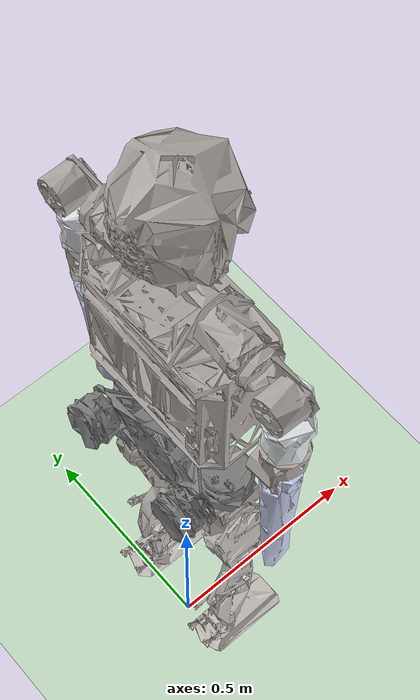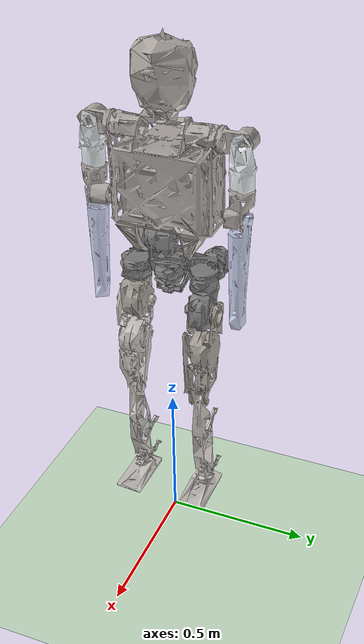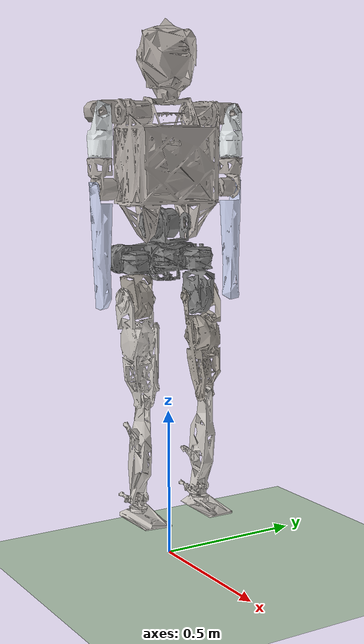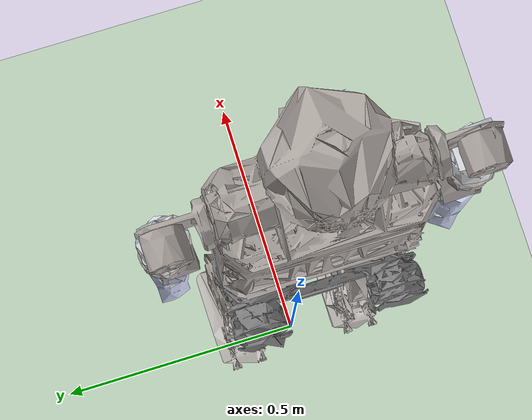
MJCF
<mujoco model="elec_robot">
  <compiler angle="radian" meshdir="meshes/"/>

  <default>
   <default class="HIT">
     <geom contype="0" conaffinity="1" group="1" rgba="0.5 0.6 0.7 0.2"/>
     <joint stiffness="100" damping="10"/>
     <default class="visual">
      <geom type="mesh" group="0" contype="0" conaffinity="0" density="0" rgba="0.5 0.5 0.5 1"/>
     </default>
     <default class="collision">
       <geom group="1" mass="0" density="0"/>
     </default>
      <site size="0.001" rgba="0.5 0.5 0.5 0.3" group="4"/>
   </default>
    <motor ctrllimited="true" ctrlrange="-0.95 0.95"/>
  </default>

  <asset>
    <material name="black" rgba="0.1 0.1 0.1 1"/>
    <material name="white" rgba="1 1 1 1"/>
    <mesh name="pelvis" file="base_link.STL"/>
    <mesh name="right_leg_link1" file="right_leg_link1.STL"/>
    <mesh name="right_leg_link2" file="right_leg_link2.STL"/>
    <mesh name="right_leg_link3" file="right_leg_link3.STL"/>
    <mesh name="right_leg_link4" file="right_leg_link4.STL"/>
    <mesh name="right_leg_link5" file="right_leg_link5.STL"/>
    <mesh name="right_leg_link6" file="right_leg_link6.STL"/>
    <mesh name="left_leg_link1" file="left_leg_link1.STL"/>
    <mesh name="left_leg_link2" file="left_leg_link2.STL"/>
    <mesh name="left_leg_link3" file="left_leg_link3.STL"/>
    <mesh name="left_leg_link4" file="left_leg_link4.STL"/>
    <mesh name="left_leg_link5" file="left_leg_link5.STL"/>
    <mesh name="left_leg_link6" file="left_leg_link6.STL"/>
    <mesh name="waist_link1" file="waist_link1.STL"/>
    <mesh name="body_link" file="body.STL"/>
    <mesh name="right_arm_link1" file="right_arm_link1.STL"/>
    <mesh name="right_arm_link2" file="right_arm_link2.STL"/>
    <mesh name="right_arm_link3" file="right_arm_link3.STL"/>
    <mesh name="right_arm_link4" file="right_arm_link4.STL"/>
    <mesh name="left_arm_link1" file="left_arm_link1.STL"/>
    <mesh name="left_arm_link2" file="left_arm_link2.STL"/>
    <mesh name="left_arm_link3" file="left_arm_link3.STL"/>
    <mesh name="left_arm_link4" file="left_arm_link4.STL"/>
    <texture builtin="gradient" height="100" rgb1=".4 .5 .6" rgb2="0 0 0" type="skybox" width="100"/>
    <texture name="texplane" type="2d" builtin="checker" rgb1=".2 .3 .4" rgb2=".1 0.15 0.2" width="100" height="100"/>
    <material name="MatPlane" reflectance="0.5" texture="texplane" texrepeat="1 1" texuniform="true"/>
  </asset>
  <worldbody>
    <geom name="floor" friction="1 .1 .1" pos="0 0 0" size="500 500 0.125" type="plane" material="MatPlane" condim="3"
          conaffinity="1" contype="1" group="2" rgba="0.8 0.9 0.8 1"/>
    <light cutoff="100" diffuse="1 1 1" dir="-0 0 -1.3" directional="true" exponent="1" pos="0 0 1.3" specular=".1 .1 .1" castshadow="false"/>

    <body name="pelvis" pos="0 0 1.085">
      <geom type="mesh" contype="0" conaffinity="0" group="1" density="0" rgba="0.498039 0.498039 0.498039 1" mesh="pelvis"/>
      <geom type="mesh" rgba="0.498039 0.498039 0.498039 1" mesh="pelvis"/>
      <joint name="pelvis_tx" type="slide" pos="0 0 0" axis="1 0 0" limited="false"
             range="-500 500" ref="0" armature="0" damping="0" stiffness="0"/>
      <joint name="pelvis_tz" type="slide" pos="0 0 0" axis="0 1 0" limited="false"
             range="-300 300" ref="0" armature="0" damping="0" stiffness="0"/>
      <joint name="pelvis_ty" type="slide" pos="0 0 0" axis="0 0 1" limited="false"
             range="-100 200" ref="0" armature="0" damping="0" stiffness="0"/>
      <joint name="pelvis_tilt" type="hinge" pos="0 0 0" axis="0 -1 0"
             limited="false" range="-1.5708 1.5708" ref="0" armature="0" damping="0" stiffness="0"/>
      <joint name="pelvis_list" type="hinge" pos="0 0 0" axis="1 0 0"
             limited="false" range="-1.5708 1.5708" ref="0" armature="0" damping="0" stiffness="0"/>
      <joint name="pelvis_rotation" type="hinge" pos="0 0 0" axis="0 0 1"
             limited="false" range=" -1.5708   1.5708" ref="0" armature="0" damping="0" stiffness="0"/>

      <body name="r_hip_roll" pos="-0.06635 -0.12 -0.0685" quat="0.499122 0.499124 0.500876 0.500874">
        <inertial pos="-0.000484394 -0.00356442 0.0624749" quat="0.706863 0.00972779 -0.0395848 0.706175" mass="1.26571" diaginertia="0.00162264 0.000911497 0.000833184"/>
        <joint name="r_hip_roll" pos="0 0 0" axis="-0.00353891 0 0.999994" range="-0.349 0.349" actuatorfrcrange="-216 216"/>
        <geom type="mesh" contype="0" conaffinity="0" group="1" density="0" rgba="0.498039 0.498039 0.498039 1" mesh="right_leg_link1"/>
        <geom type="mesh" rgba="0.498039 0.498039 0.498039 1" mesh="right_leg_link1"/>
        <body name="r_hip_yaw" pos="-0.0002348 -0.036 0.06635">
          <inertial pos="-0.00760029 -0.0822958 0.00011711" quat="0.999312 0.0370704 -0.000644184 -0.000594777" mass="2.33472" diaginertia="0.00485179 0.00264208 0.00249284"/>
          <joint name="r_hip_yaw" pos="0 0 0" axis="0 1 0" range="-0.785 0.785" actuatorfrcrange="-192 192"/>
          <geom type="mesh" contype="0" conaffinity="0" group="1" density="0" rgba="0.647059 0.619608 0.588235 1" mesh="right_leg_link2"/>
          <geom type="mesh" rgba="0.647059 0.619608 0.588235 1" mesh="right_leg_link2"/>
          <body name="r_upper_leg" pos="-0.055 -0.09 -5.3533e-05">
            <inertial pos="0.0593015 -0.152301 0.0193017" quat="0.73652 0.676413 -0.000251436 -0.00192934" mass="4.11343" diaginertia="0.00836486 0.00517234 0.00407919"/>
            <joint name="r_hip_pitch" pos="0 0 0" axis="-1 0 -0.00097332" range="-0.61 1.466" actuatorfrcrange="-352 352"/>
            <geom type="mesh" contype="0" conaffinity="0" group="1" density="0" rgba="0.776471 0.756863 0.737255 1" mesh="right_leg_link3"/>
            <geom type="mesh" rgba="0.776471 0.756863 0.737255 1" mesh="right_leg_link3"/>
            <body name="r_lower_leg" pos="0.02996 -0.33756 0.040662">
              <inertial pos="0.0240216 -0.168859 -0.0187732" quat="0.663086 0.748534 0.00134594 0.00332064" mass="1.78257" diaginertia="0.00852991 0.00786018 0.00127867"/>
              <joint name="r_knee" pos="0 0 0" axis="1 0 0.00097332" range="0 1.99" actuatorfrcrange="-770 770"/>
              <geom type="mesh" contype="0" conaffinity="0" group="1" density="0" rgba="0.776471 0.756863 0.737255 1" mesh="right_leg_link4"/>
              <geom type="mesh" rgba="0.776471 0.756863 0.737255 1" mesh="right_leg_link4"/>
              <body name="r_ankle" pos="0.010535 -0.33804 -0.036439">
                <inertial pos="0.0134999 -3.99185e-07 1.4002e-05" quat="0.659835 0.253982 0.253759 0.660088" mass="0.0978842" diaginertia="8.92195e-06 6.73566e-06 6.73333e-06"/>
                <joint name="r_ankle_pitch" pos="0 0 0" axis="-1 0 -0.00097332" range="-0.43 0.7" actuatorfrcrange="-48 48"/>
                <geom type="mesh" contype="0" conaffinity="0" group="1" density="0" rgba="0.686275 0.658824 0.639216 1" mesh="right_leg_link5"/>
                <geom type="mesh" rgba="0.686275 0.658824 0.639216 1" mesh="right_leg_link5"/>
                <body name="r_foot" pos="0.0134869 0 0.0135131">
                  <inertial pos="2.87638e-05 -0.0423042 0.00683814" quat="0.706939 0.00484503 -0.00549574 0.707236" mass="0.696871" diaginertia="0.00196353 0.00159827 0.000447286"/>
                  <joint name="r_ankle_roll" pos="0 0 0" axis="-0.000973323 -0.000115691 1" range="-0.23 0.23" actuatorfrcrange="-7.1 7.1"/>
                  <geom type="mesh" contype="0" conaffinity="0" group="1" density="0" rgba="0.776471 0.756863 0.737255 1" mesh="right_leg_link6"/>
                  <geom name="r_foot" type="mesh" rgba="0.776471 0.756863 0.737255 1" mesh="right_leg_link6"/>
                </body>
              </body>
            </body>
          </body>
        </body>
      </body>
      <body name="l_hip_roll" pos="-0.06635 0.12 -0.0685" quat="0.499114 0.499114 0.500884 0.500884">
        <inertial pos="0.000101479 -0.00356442 0.0625112" quat="0.706465 0.0288328 -0.0205648 0.706861" mass="1.26571" diaginertia="0.00162264 0.000908065 0.000836621"/>
        <joint name="l_hip_roll" pos="0 0 0" axis="-0.00353887 0 0.999994" range="-0.349 0.349" actuatorfrcrange="-216 216"/>
        <geom type="mesh" contype="0" conaffinity="0" group="1" density="0" rgba="0.498039 0.498039 0.498039 1" mesh="left_leg_link1"/>
        <geom type="mesh" rgba="0.498039 0.498039 0.498039 1" mesh="left_leg_link1"/>
        <body name="l_hip_yaw" pos="-0.000234804 -0.036 0.0663496">
          <inertial pos="0.00706651 -0.0835786 -0.000128071" quat="0.99982 -0.0182951 0.00507453 0.000708077" mass="2.33091" diaginertia="0.00484859 0.00262616 0.00248729"/>
          <joint name="l_hip_yaw" pos="0 0 0" axis="0 1 0" range="-0.785 0.785" actuatorfrcrange="-192 192"/>
          <geom type="mesh" contype="0" conaffinity="0" group="1" density="0" rgba="0.498039 0.498039 0.498039 1" mesh="left_leg_link2"/>
          <geom type="mesh" rgba="0.498039 0.498039 0.498039 1" mesh="left_leg_link2"/>
          <body name="l_upper_leg" pos="0.054997 -0.09 -0.00058083">
            <inertial pos="-0.0588223 -0.151127 0.0200423" quat="0.736602 0.676315 0.00371784 -0.00127201" mass="4.09721" diaginertia="0.0083672 0.00517249 0.0040905"/>
            <joint name="l_hip_pitch" pos="0 0 0" axis="0.999944 0 -0.010561" range="-1.47 0.61" actuatorfrcrange="-352 352"/>
            <geom type="mesh" contype="0" conaffinity="0" group="1" density="0" rgba="0.647059 0.619608 0.588235 1" mesh="left_leg_link3"/>
            <geom type="mesh" rgba="0.647059 0.619608 0.588235 1" mesh="left_leg_link3"/>
            <body name="l_lower_leg" pos="-0.065566 -0.33755 0.041408">
              <inertial pos="0.0117715 -0.168588 -0.0213849" quat="0.65754 0.753396 0.000625338 -0.00587264" mass="1.78257" diaginertia="0.0085299 0.00785907 0.00127978"/>
              <joint name="l_knee" pos="0 0 0" axis="-0.999944 0 0.010561" range="-1.99 0" actuatorfrcrange="-770 770"/>
              <geom type="mesh" contype="0" conaffinity="0" group="1" density="0" rgba="0.776471 0.756863 0.737255 1" mesh="left_leg_link4"/>
              <geom type="mesh" rgba="0.776471 0.756863 0.737255 1" mesh="left_leg_link4"/>
              <body name="l_ankle" pos="0.025061 -0.33747 -0.041657">
                <inertial pos="-0.0134993 -2.30036e-07 0.000143467" quat="0.673095 0.216375 0.225245 0.670366" mass="0.0978842" diaginertia="8.92242e-06 6.73538e-06 6.73314e-06"/>
                <joint name="l_ankle_pitch" pos="0 0 0" axis="0.999944 0 -0.010561" range="-0.7 0.44" actuatorfrcrange="-48 48"/>
                <geom type="mesh" contype="0" conaffinity="0" group="1" density="0" rgba="0.686275 0.658824 0.639216 1" mesh="left_leg_link5"/>
                <geom type="mesh" rgba="0.686275 0.658824 0.639216 1" mesh="left_leg_link5"/>
                <body name="l_foot" pos="-0.0133567 0.000180983 0.0136406">
                  <inertial pos="0.000113622 -0.0422079 0.00740873" quat="0.706953 0.00414401 0.0033631 0.70724" mass="0.696871" diaginertia="0.00196353 0.00159827 0.000447286"/>
                  <joint name="l_ankle_roll" pos="0 0 0" axis="0.0105596 0.0134062 0.999854" range="-0.23 0.23" actuatorfrcrange="-7.1 7.1"/>
                  <geom type="mesh" contype="0" conaffinity="0" group="1" density="0" rgba="0.776471 0.756863 0.737255 1" mesh="left_leg_link6"/>
                  <geom name="l_foot" type="mesh" rgba="0.776471 0.756863 0.737255 1" mesh="left_leg_link6"/>
                </body>
              </body>
            </body>
          </body>
        </body>
      </body>
      <body name="waist_link1" pos="0 0 -0.011" quat="0.499114 0.499114 0.500884 0.500884">
        <inertial pos="-0.0271621 0.0611087 -0.000108853" quat="0.708953 0.705146 0.00752903 0.0098959" mass="2.60652" diaginertia="0.00317191 0.00211996 0.00204606"/>
        <joint name="waist_yaw" pos="0 0 0" axis="0 -1 0" range="-1.05 1.05" actuatorfrcrange="-192 192"/>
        <geom type="mesh" contype="0" conaffinity="0" group="1" density="0" rgba="0.498039 0.498039 0.498039 1" mesh="waist_link1"/>
        <geom type="mesh" rgba="0.498039 0.498039 0.498039 1" mesh="waist_link1"/>
        <body name="body_link" pos="-0.0849995 0.0655 -0.000300804">
          <inertial pos="0.0861723 0.238377 -0.00115476" quat="-0.00764092 0.706118 0.0107565 0.707971" mass="20.4809" diaginertia="0.148145 0.121883 0.0784656"/>
          <joint name="waist_pitch" pos="0 0 0" axis="-0.999994 0 -0.00353887" range="-1.4 1.22" actuatorfrcrange="-400 400"/>
          <geom type="mesh" contype="0" conaffinity="0" group="1" density="0" rgba="0.686275 0.658824 0.639216 1" mesh="body_link"/>
          <geom type="mesh" rgba="0.686275 0.658824 0.639216 1" mesh="body_link"/>
          <body name="right_arm_link1" pos="-0.0859995 0.361 -0.000304342">
            <inertial pos="-0.0694543 1.5662e-05 -0.0155098" quat="0.0429924 0.753808 -0.0555255 0.653331" mass="1.02142" diaginertia="0.000751166 0.000670292 0.000661226"/>
            <joint name="right_arm_pitch" pos="0 0 0" axis="-0.999994 0 -0.00353887" range="-3.14 3.14" actuatorfrcrange="-35 35"/>
            <geom type="mesh" contype="0" conaffinity="0" group="1" density="0" rgba="0.686275 0.658824 0.639216 1" mesh="right_arm_link1"/>
            <geom type="mesh" rgba="0.686275 0.658824 0.639216 1" mesh="right_arm_link1"/>
            <body name="right_arm_link2" pos="-0.0760553 -9.33372e-05 0.0154807">
              <inertial pos="-0.000549392 -0.106081 -0.0151459" quat="0.27299 0.647089 -0.645793 0.299505" mass="1.14382" diaginertia="0.000902459 0.000864221 0.00084357"/>
              <joint name="right_arm_roll" pos="0 0 0" axis="0.00353881 0.00592617 -0.999976" range="-0.09 3.49" actuatorfrcrange="-35 35"/>
              <geom type="mesh" contype="0" conaffinity="0" group="1" density="0" rgba="0.898039 0.917647 0.929412 1" mesh="right_arm_link2"/>
              <geom type="mesh" rgba="0.898039 0.917647 0.929412 1" mesh="right_arm_link2"/>
              <body name="right_arm_link3" pos="-0.00072763 -0.144903 -0.0165117">
                <inertial pos="0.0141039 -0.0902942 -0.00110305" quat="0.697068 0.711039 -0.0395555 -0.0834042" mass="1.06928" diaginertia="0.000865937 0.000789266 0.000722967"/>
                <joint name="right_arm_yaw" pos="0 0 0" axis="-0.00540008 -0.999968 -0.00594523" range="-3.14 3.14" actuatorfrcrange="-35 35"/>
                <geom type="mesh" contype="0" conaffinity="0" group="1" density="0" rgba="0.686275 0.658824 0.639216 1" mesh="right_arm_link3"/>
                <geom type="mesh" rgba="0.686275 0.658824 0.639216 1" mesh="right_arm_link3"/>
                <body name="right_arm_link4" pos="-0.0162805 -0.100916 7.88955e-05">
                  <inertial pos="0.0140442 -0.185495 0.0025964" quat="0.5045 0.514624 -0.47678 0.503312" mass="0.244437" diaginertia="0.00432857 0.00432154 0.000181191"/>
                  <joint name="right_arm_forearm_pitch" pos="0 0 0" axis="0.999056 -0.00513871 -0.0431342" range="-1.75 1.75" actuatorfrcrange="-35 35"/>
                  <geom type="mesh" contype="0" conaffinity="0" group="1" density="0" rgba="0.796078 0.823529 0.937255 1" mesh="right_arm_link4"/>
                  <geom type="mesh" rgba="0.796078 0.823529 0.937255 1" mesh="right_arm_link4"/>
                </body>
              </body>
            </body>
          </body>
          <body name="left_arm_link1" pos="0.255998 0.361 0.000905951">
            <inertial pos="0.0695623 -0.000314791 -0.0150146" quat="0.0617733 0.650084 -0.0358009 0.756501" mass="1.02142" diaginertia="0.000751166 0.000670292 0.000661226"/>
            <joint name="left_arm_pitch" pos="0 0 0" axis="0.999994 0 0.00353887" range="-3.14 3.14" actuatorfrcrange="-35 35"/>
            <geom type="mesh" contype="0" conaffinity="0" group="1" density="0" rgba="0.686275 0.658824 0.639216 1" mesh="left_arm_link1"/>
            <geom type="mesh" rgba="0.686275 0.658824 0.639216 1" mesh="left_arm_link1"/>
            <body name="left_arm_link2" pos="0.0759438 0.000401971 0.0160137">
              <inertial pos="-0.000398859 -0.106502 -0.0116721" quat="0.301057 0.644332 -0.641429 0.287699" mass="1.14382" diaginertia="0.000906245 0.000864188 0.000839817"/>
              <joint name="left_arm_roll" pos="0 0 0" axis="-0.00353772 0.025522 0.999668" range="-0.09 3.49" actuatorfrcrange="-35 35"/>
              <geom type="mesh" contype="0" conaffinity="0" group="1" density="0" rgba="0.898039 0.917647 0.929412 1" mesh="left_arm_link2"/>
              <geom type="mesh" rgba="0.898039 0.917647 0.929412 1" mesh="left_arm_link2"/>
              <body name="left_arm_link3" pos="-0.000596329 -0.145351 -0.0119464">
                <inertial pos="-0.0150072 -0.0901232 0.00240674" quat="0.719242 0.68974 0.0692719 0.0463848" mass="1.06928" diaginertia="0.000865936 0.000789262 0.000722971"/>
                <joint name="left_arm_yaw" pos="0 0 0" axis="-0.00449444 -0.999665 0.025506" range="-3.14 3.14" actuatorfrcrange="-35 35"/>
                <geom type="mesh" contype="0" conaffinity="0" group="1" density="0" rgba="0.686275 0.658824 0.639216 1" mesh="left_arm_link3"/>
                <geom type="mesh" rgba="0.686275 0.658824 0.639216 1" mesh="left_arm_link3"/>
                <body name="left_arm_link4" pos="0.0152948 -0.101042 0.00239398">
                  <inertial pos="-0.0156904 -0.185281 0.00604283" quat="0.521246 0.482314 -0.501328 0.494315" mass="0.244445" diaginertia="0.00432863 0.0043216 0.000181192"/>
                  <joint name="left_arm_forearm_pitch" pos="0 0 0" axis="0.999922 -0.00479064 -0.0115637" range="-1.75 1.75" actuatorfrcrange="-35 35"/>
                  <geom type="mesh" contype="0" conaffinity="0" group="1" density="0" rgba="0.796078 0.823529 0.937255 1" mesh="left_arm_link4"/>
                  <geom type="mesh" rgba="0.796078 0.823529 0.937255 1" mesh="left_arm_link4"/>
                </body>
              </body>
            </body>
          </body>
        </body>
      </body>
    </body>
  </worldbody>
  <actuator>
          <motor name="waist_yaw_actuator"  joint="waist_yaw" gear="1"/>
          <motor name="waist_pitch_actuator"  joint="waist_pitch" gear="1"/>

          <motor name="left_arm_yaw_actuator" joint="left_arm_yaw" gear="1"/>
          <motor name="left_arm_pitch_actuator" joint="left_arm_pitch" gear="1"/>
          <motor name="left_arm_roll_actuator" joint="left_arm_roll" gear="1"/>
          <motor name="left_arm_forearm_pitch_actuator" joint="left_arm_forearm_pitch" gear="1"/>

          <motor name="right_arm_yaw_actuator" joint="right_arm_yaw" gear="1"/>
          <motor name="right_arm_pitch_actuator" joint="right_arm_pitch" gear="1"/>
          <motor name="right_arm_roll_actuator" joint="right_arm_roll" gear="1"/>
          <motor name="right_arm_forearm_pitch_actuator" joint="right_arm_forearm_pitch" gear="1"/>

          <motor name="l_hip_pitch_actuator" joint="l_hip_pitch" gear="1"/>
          <motor name="l_hip_roll_actuator" joint="l_hip_roll" gear="1"/>
          <motor name="l_hip_yaw_actuator" joint="l_hip_yaw" gear="1"/>
          <motor name="l_knee_actuator" joint="l_knee" gear="1"/>
          <motor name="l_ankle_pitch_actuator" joint="l_ankle_pitch" gear="1"/>
          <motor name="l_ankle_roll_actuator" joint="l_ankle_roll" gear="1"/>

          <motor name="r_hip_pitch_actuator" joint="r_hip_pitch" gear="1"/>
          <motor name="r_hip_roll_actuator" joint="r_hip_roll" gear="1"/>
          <motor name="r_hip_yaw_actuator" joint="r_hip_yaw" gear="1"/>
          <motor name="r_knee_actuator" joint="r_knee" gear="1"/>
          <motor name="r_ankle_pitch_actuator" joint="r_ankle_pitch" gear="1"/>
          <motor name="r_ankle_roll_actuator" joint="r_ankle_roll" gear="1"/>

  </actuator>
</mujoco>
